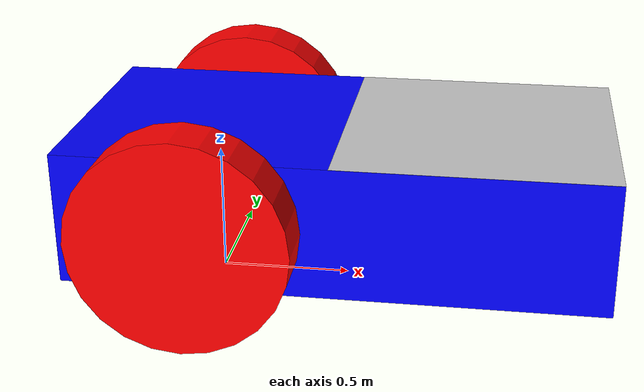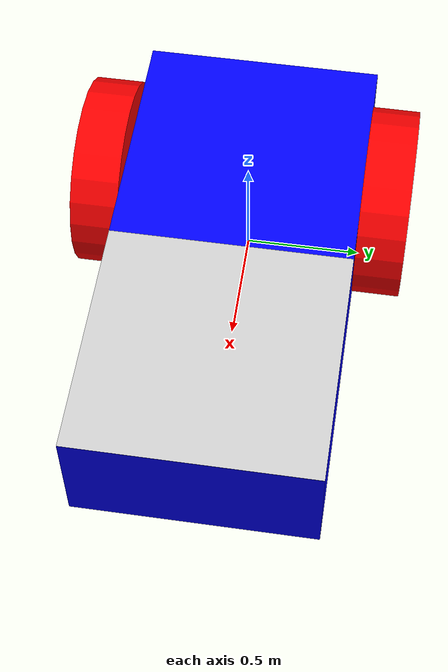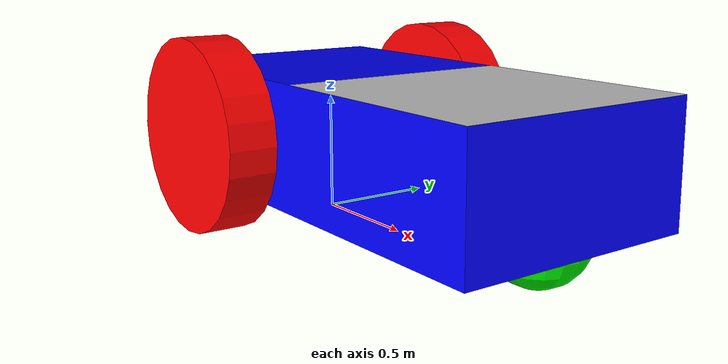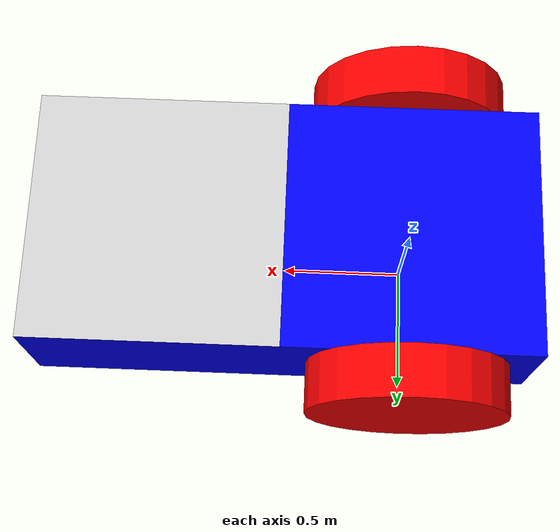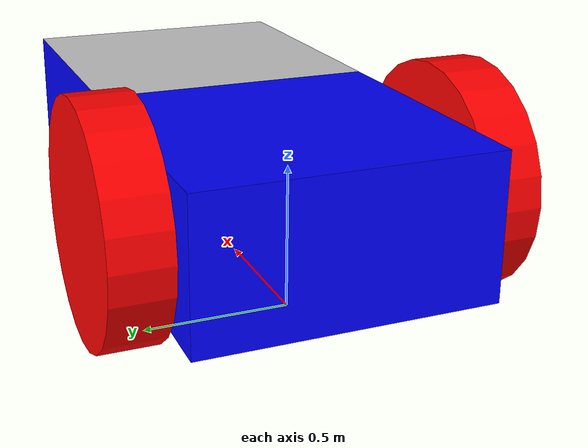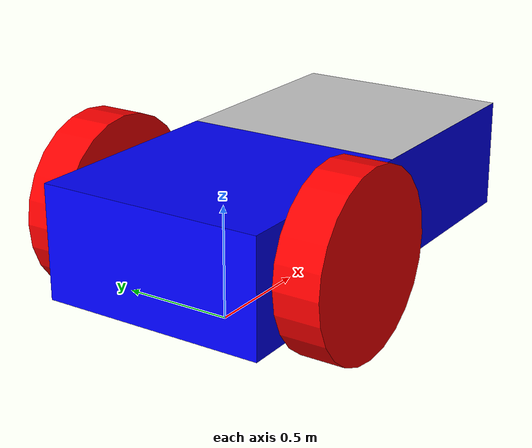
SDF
<?xml version="1.0" ?>
<sdf version="1.8">
    <model name="rover">
            <link name='chassis'>
            <pose relative_to='__model__'>0.5 0 0.4 0 0 0</pose>
            <inertial> <!--inertial properties of the link mass, inertia matix-->
                <mass>1.14395</mass>
                <inertia>
                    <ixx>0.095329</ixx>
                    <ixy>0</ixy>
                    <ixz>0</ixz>
                    <iyy>0.381317</iyy>
                    <iyz>0</iyz>
                    <izz>0.476646</izz>
                </inertia>
            </inertial>
            <visual name="qrcode1">
                <pose>.5 0 .25 0 0 -1.57079632679</pose>
                    <cast_shadows>false</cast_shadows>
                    <geometry>
                        <plane>
                            <size> 1 1 </size>
                        </plane>
                    </geometry>

                    <material>
                        <render_order>10</render_order>
                        <ambient>0.8 0.8 0.8 1</ambient>
                        <diffuse>0.8 0.8 0.8 1</diffuse>
                        <specular>0.1 0.1 0.1 1</specular>
                        <pbr>
                            <metal>
                                <albedo_map>model://aruco_marker/materials/textures/aruco_72.png</albedo_map>
                                <roughness>0.6</roughness>
                                <metalness>0</metalness>
                            </metal>
                        </pbr>
                    </material>
                </visual>

            <visual name='visual'>
                <geometry>
                    <box>
                        <size>2.0 1.0 0.5</size>
                    </box>
                </geometry>
                <!--Color of the link-->
                <material>
                    <ambient>0.0 0.0 1.0 1</ambient>
                    <diffuse>0.0 0.0 1.0 1</diffuse>
                    <specular>0.0 0.0 1.0 1</specular>
                </material>
            </visual>
            
            <collision name='collision'>
                <geometry>
                    <box>
                        <size>2.0 1.0 0.5</size>
                    </box>
                </geometry>
            </collision>
          </link>

          <!--Left wheel-->
          <link name='left_wheel'>
            <pose relative_to="chassis">-0.5 0.6 0 -1.5707 0 0</pose> <!--angles are in radian-->
            <inertial>
                <mass>1</mass>
                <inertia>
                    <ixx>0.043333</ixx>
                    <ixy>0</ixy>
                    <ixz>0</ixz>
                    <iyy>0.043333</iyy>
                    <iyz>0</iyz>
                    <izz>0.08</izz>
                </inertia>
            </inertial>
            <visual name='visual'>
                <geometry>
                    <cylinder>
                        <radius>0.4</radius>
                        <length>0.2</length>
                    </cylinder>
                </geometry>
                <material>
                    <ambient>1.0 0.0 0.0 1</ambient>
                    <diffuse>1.0 0.0 0.0 1</diffuse>
                    <specular>1.0 0.0 0.0 1</specular>
                </material>
            </visual>
            <collision name='collision'>
                <geometry>
                    <cylinder>
                        <radius>0.4</radius>
                        <length>0.2</length>
                    </cylinder>
                </geometry>
            </collision>
          </link>

          <!--The same as left wheel but with different position-->
          <link name='right_wheel'>
            <pose relative_to="chassis">-0.5 -0.6 0 -1.5707 0 0</pose> <!--angles are in radian-->
            <inertial>
                <mass>1</mass>
                <inertia>
                    <ixx>0.043333</ixx>
                    <ixy>0</ixy>
                    <ixz>0</ixz>
                    <iyy>0.043333</iyy>
                    <iyz>0</iyz>
                    <izz>0.08</izz>
                </inertia>
            </inertial>
            <visual name='visual'>
                <geometry>
                    <cylinder>
                        <radius>0.4</radius>
                        <length>0.2</length>
                    </cylinder>
                </geometry>
                <material>
                    <ambient>1.0 0.0 0.0 1</ambient>
                    <diffuse>1.0 0.0 0.0 1</diffuse>
                    <specular>1.0 0.0 0.0 1</specular>
                </material>
            </visual>
            <collision name='collision'>
                <geometry>
                    <cylinder>
                        <radius>0.4</radius>
                        <length>0.2</length>
                    </cylinder>
                </geometry>
            </collision>
          </link>

          <!--arbitrary frame-->
          <frame name="caster_frame" attached_to='chassis'>
            <pose>0.8 0 -0.2 0 0 0</pose>
          </frame>

          <!--caster wheel-->
          <link name='caster'>
            <pose relative_to='caster_frame'/>
            <inertial>
                <mass>1</mass>
                <inertia>
                    <ixx>0.016</ixx>
                    <ixy>0</ixy>
                    <ixz>0</ixz>
                    <iyy>0.016</iyy>
                    <iyz>0</iyz>
                    <izz>0.016</izz>
                </inertia>
            </inertial>
            <visual name='visual'>
                <geometry>
                    <sphere>
                        <radius>0.2</radius>
                    </sphere>
                </geometry>
                <material>
                    <ambient>0.0 1 0.0 1</ambient>
                    <diffuse>0.0 1 0.0 1</diffuse>
                    <specular>0.0 1 0.0 1</specular>
                </material>
            </visual>
            <collision name='collision'>
                <geometry>
                    <sphere>
                        <radius>0.2</radius>
                    </sphere>
                </geometry>
            </collision>
          </link>

          <!--left wheel joint-->
          <joint name='left_wheel_joint' type='revolute'>
            <pose relative_to='left_wheel'/>
            <parent>chassis</parent>
            <child>left_wheel</child>
            <axis>
                <xyz expressed_in='__model__'>0 1 0</xyz> <!--can be descired to any frame or even arbitrary frames-->
                <limit>
                    <velocity>20</velocity>
                    <lower>-1.79769e+308</lower>    <!--negative infinity-->
                    <upper>1.79769e+308</upper>     <!--positive infinity-->
                </limit>
            </axis>
          </joint>

          <!--right wheel joint-->
          <joint name='right_wheel_joint' type='revolute'>
            <pose relative_to='right_wheel'/>
            <parent>chassis</parent>
            <child>right_wheel</child>
            <axis>
                <xyz expressed_in='__model__'>0 1 0</xyz>
                <limit>
                    <velocity>20</velocity>
                    <lower>-1.79769e+308</lower>    <!--negative infinity-->
                    <upper>1.79769e+308</upper>     <!--positive infinity-->
                </limit>
            </axis>
          </joint>

          <!--caster wheel joint--> <!--pose defult value is the child-->
          <joint name='caster_wheel' type='ball'>
            <parent>chassis</parent>
            <child>caster</child>
          </joint>
            <plugin
                filename="libignition-gazebo-diff-drive-system.so"
                name="ignition::gazebo::systems::DiffDrive">
                <left_joint>left_wheel_joint</left_joint>
                <right_joint>right_wheel_joint</right_joint>
                <wheel_separation>1.2</wheel_separation>
                <wheel_radius>0.4</wheel_radius>
                <odom_publish_frequency>1</odom_publish_frequency>
                <topic>cmd_vel</topic>
            </plugin>
    </model>
</sdf>
